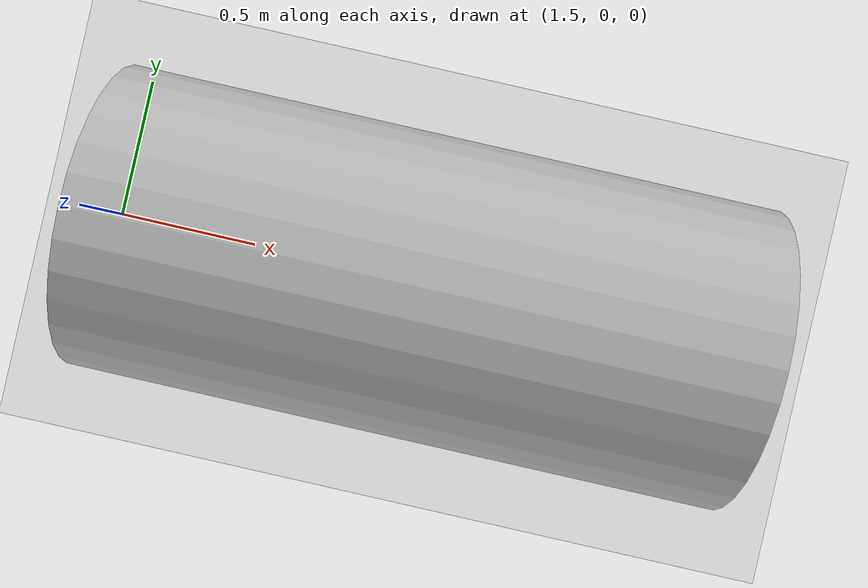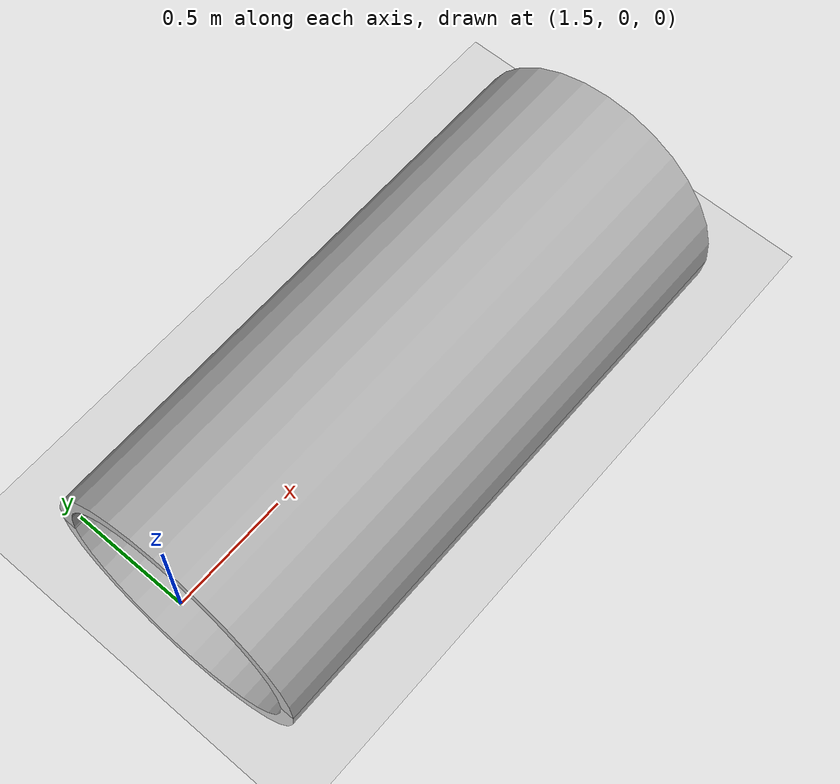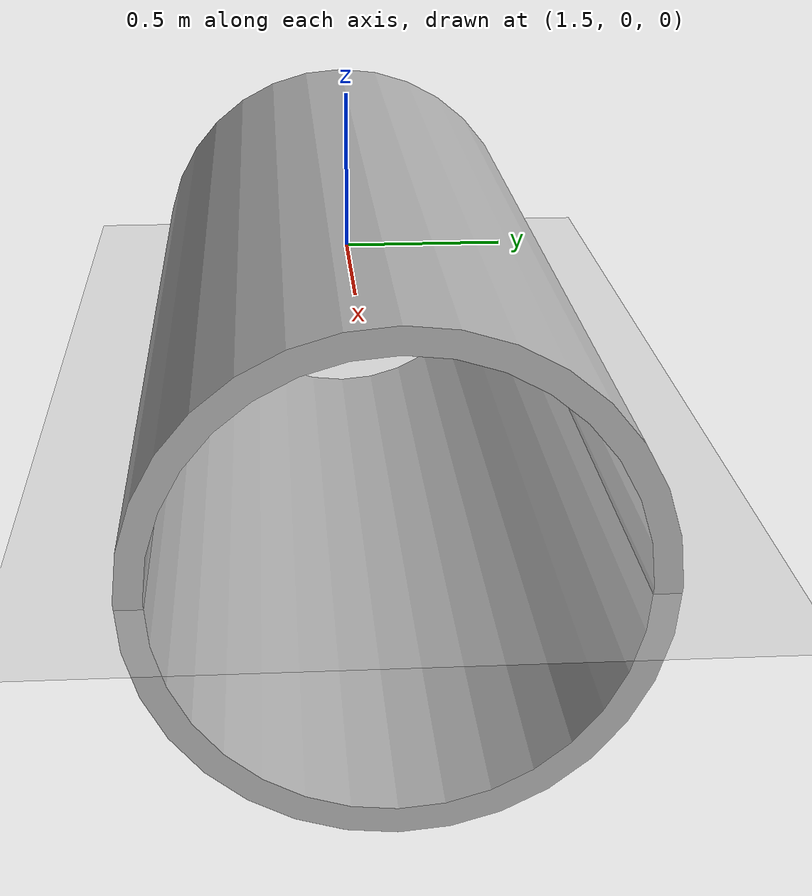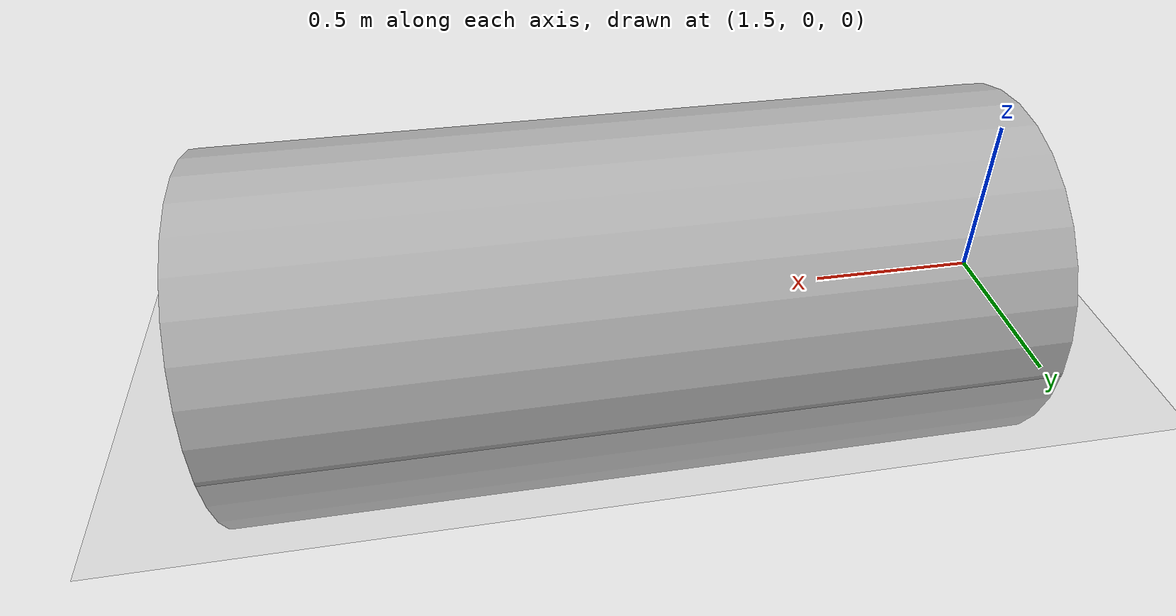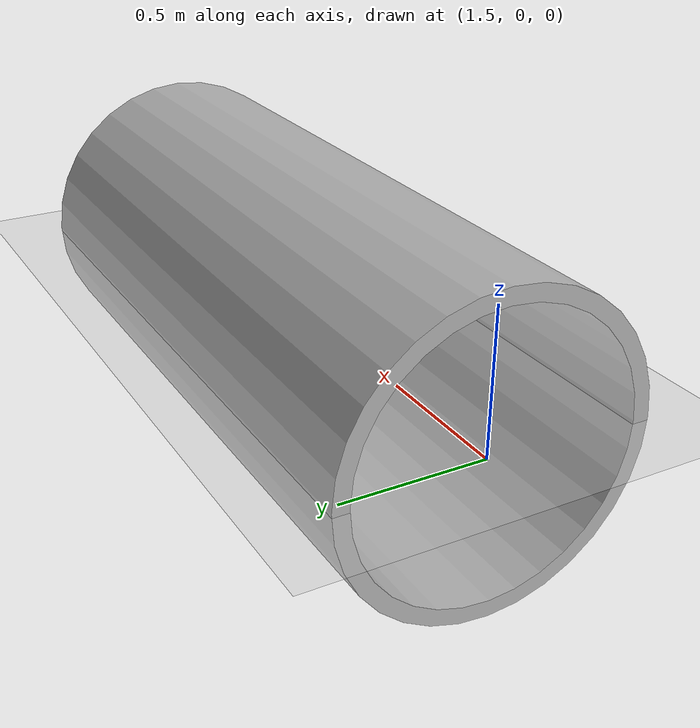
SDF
<?xml version="1.0" ?>
<sdf version="1.4">
  <world name="default">
    <physics type='ode'>
      <gravity>0 0 -9.81</gravity>
      <!-- max step size has to be a multiple of the desired task rate-->
      <max_step_size>0.001</max_step_size>
      <real_time_factor>1</real_time_factor>
    </physics>
    <!-- A global light source -->
    <include>
      <uri>model://sun</uri>
    </include>
    <!-- A ground plane -->
    <include>
      <uri>model://ground_plane</uri>
    </include>
    <include>
      <name>pallet</name>
      <uri>model://duct</uri>
      <pose>1.0 0.354 0.51 0 1.57 0.0</pose>
    </include>
  </world>
</sdf>

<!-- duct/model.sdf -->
<sdf version="1.4">
	<model name="duct">
		<static>true</static>
		<link name="link">
			<pose>0 0 0.06 0 0 0</pose>
			<collision name="collision">
				<geometry>
					<mesh>
						<uri>model://duct/mesh/duct.dae</uri>
						<scale>0.5 0.5 1.0</scale>
					</mesh>
				</geometry>
				<surface>
					<bounce>
						<restitution_coefficient>0.01</restitution_coefficient>
						<threshold>5.0</threshold>
					</bounce>
					<friction>
						<ode>
							<mu>10</mu>
							<mu2>10</mu2>
						</ode>
					</friction>
					<contact>
						<ode>
							<soft_cfm>0.001</soft_cfm>
							<kp>100000.0</kp>
							<kd>1000.0</kd>
						</ode>
					</contact>
				</surface>
			</collision>
			<visual name="visual">
				<geometry>
					<mesh>
						<uri>model://duct/mesh/duct.dae</uri>
						<scale>0.5 0.5 1.0</scale>
					</mesh>
				</geometry>
			</visual>
		</link>
	</model>
</sdf>
